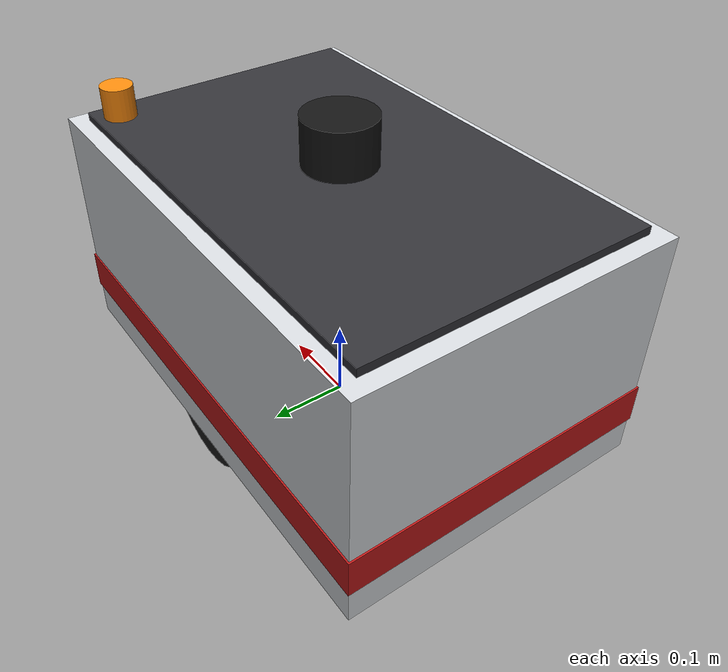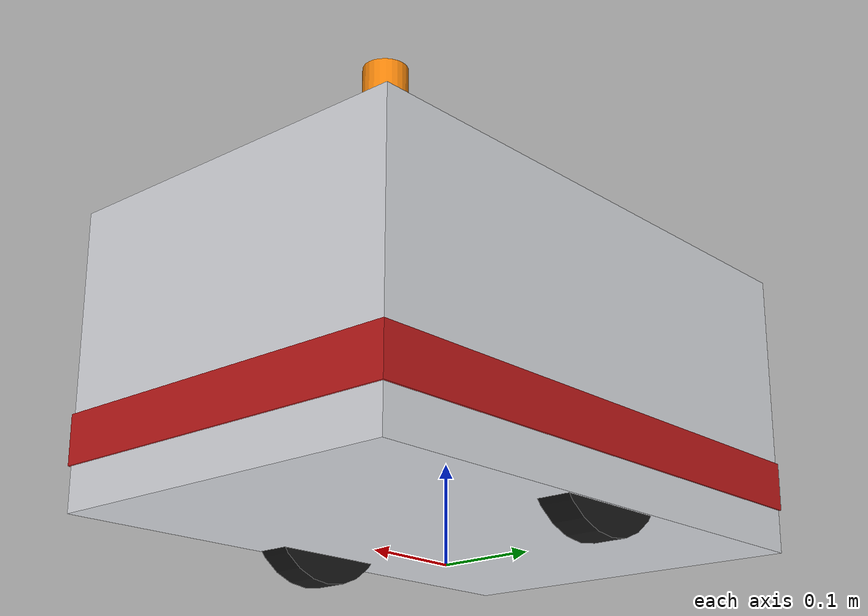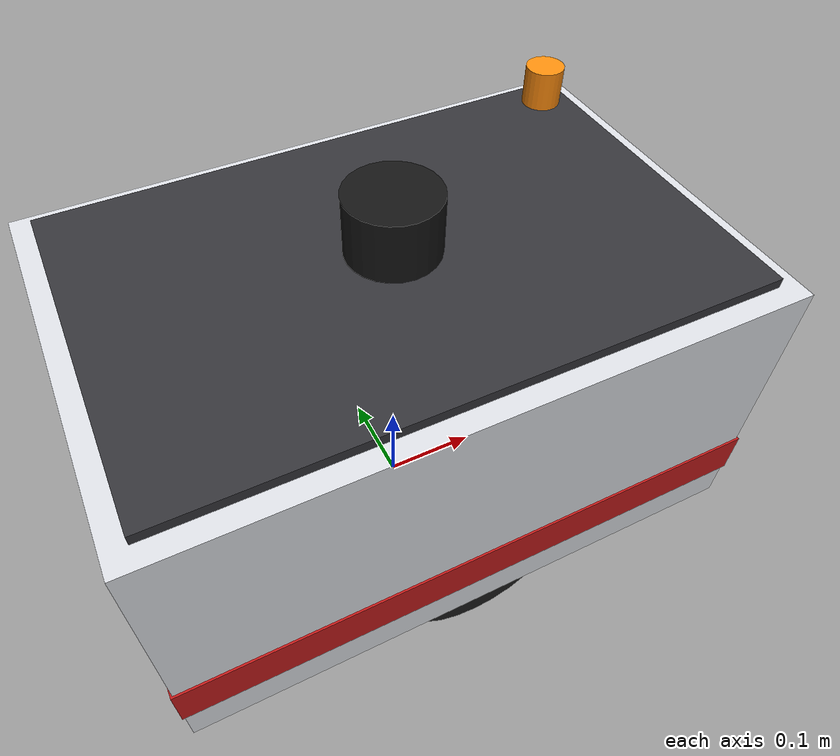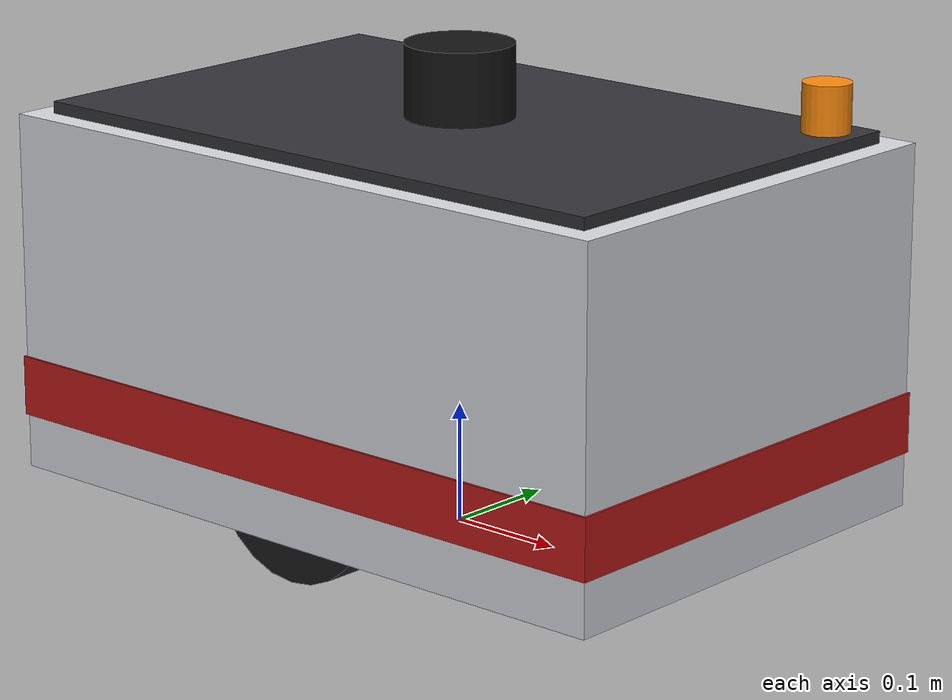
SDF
<?xml version="1.0" ?>
<sdf version="1.8">
  <model name="shuttle_amr">
    <link name="body">
      <inertial>
        <pose>0 0 0.18 0 0 0</pose>
        <mass>60</mass>
        <!-- 균질 박스 0.6 x 0.4 x 0.3: m/12 (w²+h²), (l²+h²), (l²+w²) -->
        <inertia><ixx>1.25</ixx><iyy>2.25</iyy><izz>2.6</izz><ixy>0</ixy><ixz>0</ixz><iyz>0</iyz></inertia>
      </inertial>
      <collision name="body_collision">
        <pose>0 0 0.18 0 0 0</pose>
        <geometry><box><size>0.60 0.40 0.30</size></box></geometry>
      </collision>
      <visual name="body">
        <pose>0 0 0.18 0 0 0</pose>
        <geometry><box><size>0.60 0.40 0.30</size></box></geometry>
        <material><ambient>0.85 0.86 0.88 1</ambient><diffuse>0.85 0.86 0.88 1</diffuse><specular>0.2 0.2 0.2 1</specular></material>
      </visual>
      <visual name="bumper_band">
        <pose>0 0 0.10 0 0 0</pose>
        <geometry><box><size>0.604 0.404 0.05</size></box></geometry>
        <material><ambient>0.75 0.10 0.10 1</ambient><diffuse>0.75 0.10 0.10 1</diffuse></material>
      </visual>
      <visual name="deck">
        <pose>0 0 0.335 0 0 0</pose>
        <geometry><box><size>0.56 0.36 0.01</size></box></geometry>
        <material><ambient>0.20 0.20 0.22 1</ambient><diffuse>0.20 0.20 0.22 1</diffuse></material>
      </visual>
      <visual name="lidar">
        <pose>0 0 0.37 0 0 0</pose>
        <geometry><cylinder><radius>0.045</radius><length>0.06</length></cylinder></geometry>
        <material><ambient>0.08 0.08 0.08 1</ambient><diffuse>0.08 0.08 0.08 1</diffuse></material>
      </visual>
      <visual name="beacon">
        <pose>0.25 0.15 0.36 0 0 0</pose>
        <geometry><cylinder><radius>0.02</radius><length>0.04</length></cylinder></geometry>
        <material><ambient>1.0 0.55 0.05 1</ambient><diffuse>1.0 0.55 0.05 1</diffuse><emissive>0.6 0.3 0.0 1</emissive></material>
      </visual>
      <collision name="caster_front">
        <pose>0.24 0 0.03 0 0 0</pose>
        <geometry><sphere><radius>0.03</radius></sphere></geometry>
        <surface><friction><ode><mu>0.05</mu><mu2>0.05</mu2></ode></friction></surface>
      </collision>
      <collision name="caster_rear">
        <pose>-0.24 0 0.03 0 0 0</pose>
        <geometry><sphere><radius>0.03</radius></sphere></geometry>
        <surface><friction><ode><mu>0.05</mu><mu2>0.05</mu2></ode></friction></surface>
      </collision>
    </link>

    <link name="wheel_left">
      <pose>0 0.18 0.0825 0 0 0</pose>
      <inertial>
        <mass>1.0</mass>
        <inertia><ixx>0.0018</ixx><iyy>0.0034</iyy><izz>0.0018</izz><ixy>0</ixy><ixz>0</ixz><iyz>0</iyz></inertia>
      </inertial>
      <!-- 얇은 원판 충돌 (우리 AMR 과 같은 이유: 제자리 회전 시 실효 바퀴 간격 고정) -->
      <collision name="collision">
        <pose>0 0 0 1.5708 0 0</pose>
        <geometry><cylinder><radius>0.0825</radius><length>0.002</length></cylinder></geometry>
        <surface><friction><ode><mu>1.0</mu><mu2>1.0</mu2></ode></friction></surface>
      </collision>
      <visual name="visual">
        <pose>0 0 0 1.5708 0 0</pose>
        <geometry><cylinder><radius>0.0825</radius><length>0.035</length></cylinder></geometry>
        <material><ambient>0.1 0.1 0.1 1</ambient><diffuse>0.1 0.1 0.1 1</diffuse></material>
      </visual>
    </link>
    <link name="wheel_right">
      <pose>0 -0.18 0.0825 0 0 0</pose>
      <inertial>
        <mass>1.0</mass>
        <inertia><ixx>0.0018</ixx><iyy>0.0034</iyy><izz>0.0018</izz><ixy>0</ixy><ixz>0</ixz><iyz>0</iyz></inertia>
      </inertial>
      <collision name="collision">
        <pose>0 0 0 1.5708 0 0</pose>
        <geometry><cylinder><radius>0.0825</radius><length>0.002</length></cylinder></geometry>
        <surface><friction><ode><mu>1.0</mu><mu2>1.0</mu2></ode></friction></surface>
      </collision>
      <visual name="visual">
        <pose>0 0 0 1.5708 0 0</pose>
        <geometry><cylinder><radius>0.0825</radius><length>0.035</length></cylinder></geometry>
        <material><ambient>0.1 0.1 0.1 1</ambient><diffuse>0.1 0.1 0.1 1</diffuse></material>
      </visual>
    </link>
    <joint name="wheel_left_joint" type="revolute">
      <parent>body</parent>
      <child>wheel_left</child>
      <axis><xyz>0 1 0</xyz><limit><lower>-1e16</lower><upper>1e16</upper><effort>4</effort></limit></axis>
    </joint>
    <joint name="wheel_right_joint" type="revolute">
      <parent>body</parent>
      <child>wheel_right</child>
      <axis><xyz>0 1 0</xyz><limit><lower>-1e16</lower><upper>1e16</upper><effort>4</effort></limit></axis>
    </joint>
  </model>
</sdf>
